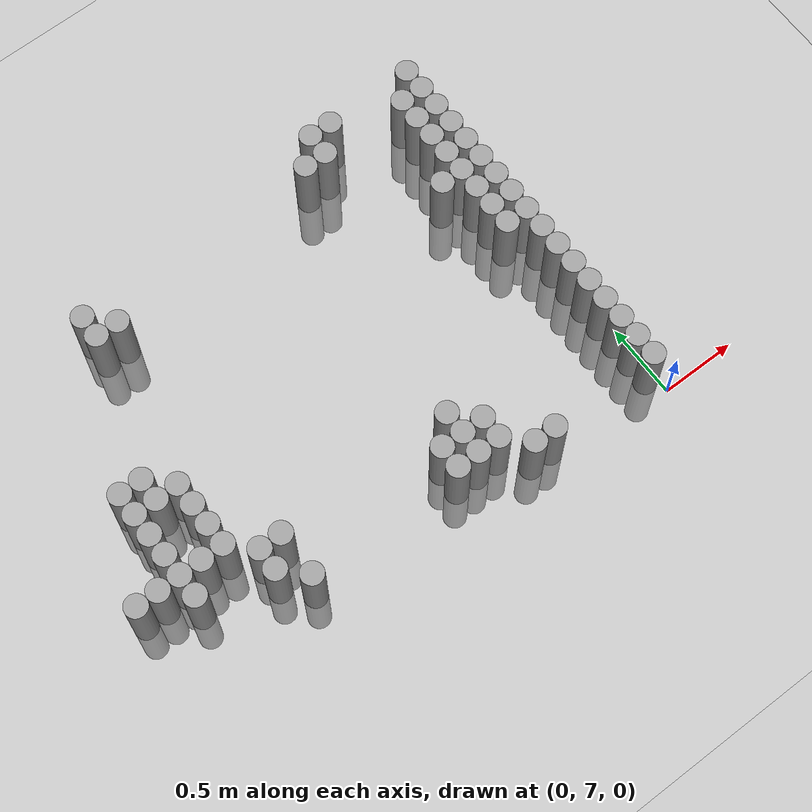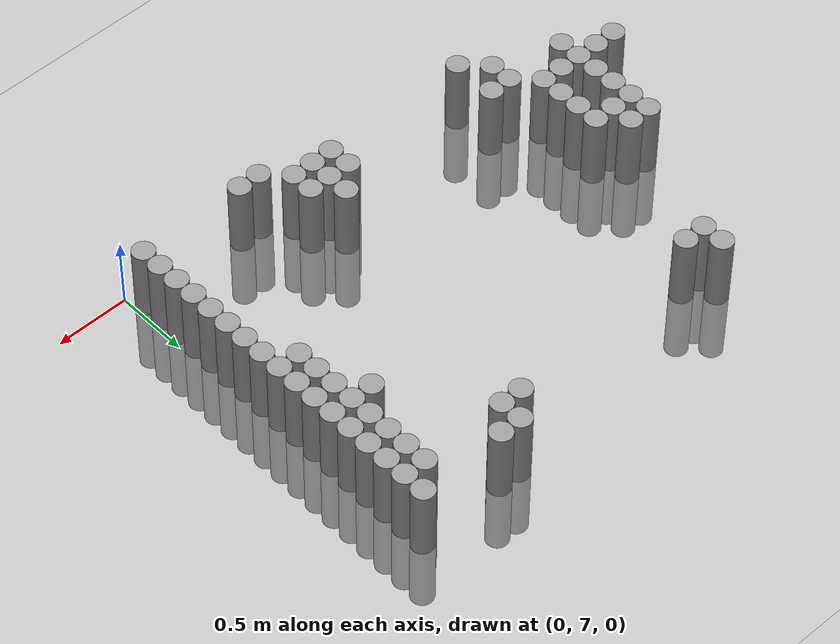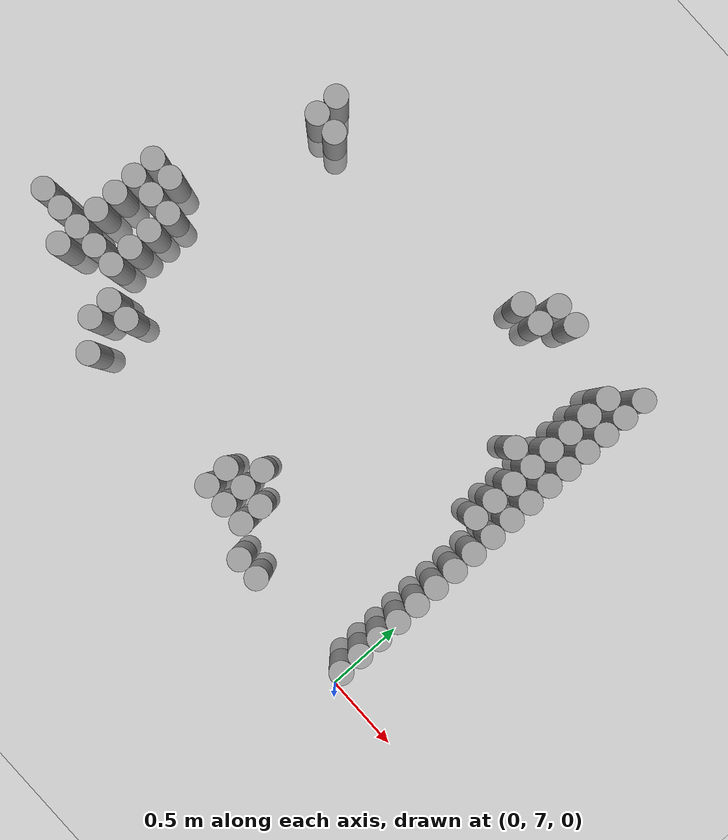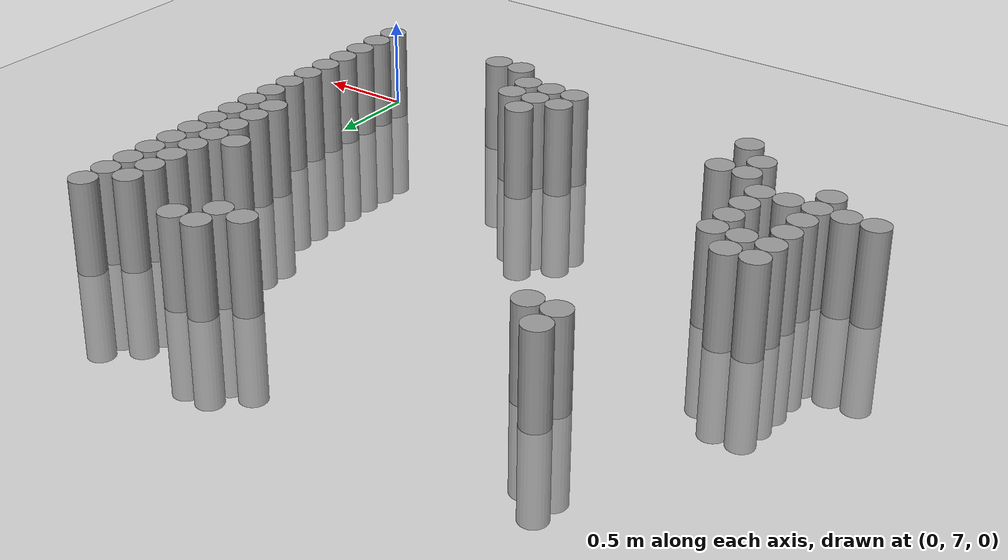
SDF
<sdf version="1.6">
 <world name="default">
  <model name="ground_plane">
   <static>1</static>
   <static>1</static>
   <link name="link">
    <collision name="collision">
     <geometry><plane><normal>0 0 1</normal><size>100 100</size></plane></geometry>
     <surface><friction><ode><mu>100</mu><mu2>50</mu2></ode></friction></surface>
    </collision>
    <visual name="visual">
     <cast_shadows>0</cast_shadows>
     <geometry><plane><normal>0 0 1</normal><size>100 100</size></plane></geometry>
     <material>
      <script><uri>file://media/materials/scripts/gazebo.material</uri><name>Gazebo/Grey</name></script>
     </material>
    </visual>
   </link>
  </model>
  <model name="unit_cylinder_169">
   <static>1</static>
   <pose>-3.375000 7.725000 0.000000 0.000000 0.000000 0.000000</pose>
   <link name="link">
    <inertial>
     <mass>1</mass>
     <inertia><ixx>0.145833</ixx><ixy>0</ixy><ixz>0</ixz><iyy>0.145833</iyy><iyz>0</iyz><izz>0.125</izz></inertia>
    </inertial>
    <collision name="collision">
     <geometry><cylinder><radius>0.075000</radius><length>1</length></cylinder></geometry>
    </collision>
    <visual name="visual">
     <geometry><cylinder><radius>0.075000</radius><length>1</length></cylinder></geometry>
     <material>
      <script><name>Gazebo/Grey</name><uri>file://media/materials/scripts/gazebo.material</uri></script>
     </material>
    </visual>
   </link>
  </model>
  <model name="unit_cylinder_176">
   <static>1</static>
   <pose>-3.225000 7.725000 0.000000 0.000000 0.000000 0.000000</pose>
   <link name="link">
    <inertial>
     <mass>1</mass>
     <inertia><ixx>0.145833</ixx><ixy>0</ixy><ixz>0</ixz><iyy>0.145833</iyy><iyz>0</iyz><izz>0.125</izz></inertia>
    </inertial>
    <collision name="collision">
     <geometry><cylinder><radius>0.075000</radius><length>1</length></cylinder></geometry>
    </collision>
    <visual name="visual">
     <geometry><cylinder><radius>0.075000</radius><length>1</length></cylinder></geometry>
     <material>
      <script><name>Gazebo/Grey</name><uri>file://media/materials/scripts/gazebo.material</uri></script>
     </material>
    </visual>
   </link>
  </model>
  <model name="unit_cylinder_184">
   <static>1</static>
   <pose>-3.075000 7.575000 0.000000 0.000000 0.000000 0.000000</pose>
   <link name="link">
    <inertial>
     <mass>1</mass>
     <inertia><ixx>0.145833</ixx><ixy>0</ixy><ixz>0</ixz><iyy>0.145833</iyy><iyz>0</iyz><izz>0.125</izz></inertia>
    </inertial>
    <collision name="collision">
     <geometry><cylinder><radius>0.075000</radius><length>1</length></cylinder></geometry>
    </collision>
    <visual name="visual">
     <geometry><cylinder><radius>0.075000</radius><length>1</length></cylinder></geometry>
     <material>
      <script><name>Gazebo/Grey</name><uri>file://media/materials/scripts/gazebo.material</uri></script>
     </material>
    </visual>
   </link>
  </model>
  <model name="unit_cylinder_185">
   <static>1</static>
   <pose>-3.075000 7.725000 0.000000 0.000000 0.000000 0.000000</pose>
   <link name="link">
    <inertial>
     <mass>1</mass>
     <inertia><ixx>0.145833</ixx><ixy>0</ixy><ixz>0</ixz><iyy>0.145833</iyy><iyz>0</iyz><izz>0.125</izz></inertia>
    </inertial>
    <collision name="collision">
     <geometry><cylinder><radius>0.075000</radius><length>1</length></cylinder></geometry>
    </collision>
    <visual name="visual">
     <geometry><cylinder><radius>0.075000</radius><length>1</length></cylinder></geometry>
     <material>
      <script><name>Gazebo/Grey</name><uri>file://media/materials/scripts/gazebo.material</uri></script>
     </material>
    </visual>
   </link>
  </model>
  <model name="unit_cylinder_186">
   <static>1</static>
   <pose>-3.075000 7.875000 0.000000 0.000000 0.000000 0.000000</pose>
   <link name="link">
    <inertial>
     <mass>1</mass>
     <inertia><ixx>0.145833</ixx><ixy>0</ixy><ixz>0</ixz><iyy>0.145833</iyy><iyz>0</iyz><izz>0.125</izz></inertia>
    </inertial>
    <collision name="collision">
     <geometry><cylinder><radius>0.075000</radius><length>1</length></cylinder></geometry>
    </collision>
    <visual name="visual">
     <geometry><cylinder><radius>0.075000</radius><length>1</length></cylinder></geometry>
     <material>
      <script><name>Gazebo/Grey</name><uri>file://media/materials/scripts/gazebo.material</uri></script>
     </material>
    </visual>
   </link>
  </model>
  <model name="unit_cylinder_187">
   <static>1</static>
   <pose>-3.075000 8.025000 0.000000 0.000000 0.000000 0.000000</pose>
   <link name="link">
    <inertial>
     <mass>1</mass>
     <inertia><ixx>0.145833</ixx><ixy>0</ixy><ixz>0</ixz><iyy>0.145833</iyy><iyz>0</iyz><izz>0.125</izz></inertia>
    </inertial>
    <collision name="collision">
     <geometry><cylinder><radius>0.075000</radius><length>1</length></cylinder></geometry>
    </collision>
    <visual name="visual">
     <geometry><cylinder><radius>0.075000</radius><length>1</length></cylinder></geometry>
     <material>
      <script><name>Gazebo/Grey</name><uri>file://media/materials/scripts/gazebo.material</uri></script>
     </material>
    </visual>
   </link>
  </model>
  <model name="unit_cylinder_188">
   <static>1</static>
   <pose>-3.075000 8.175000 0.000000 0.000000 0.000000 0.000000</pose>
   <link name="link">
    <inertial>
     <mass>1</mass>
     <inertia><ixx>0.145833</ixx><ixy>0</ixy><ixz>0</ixz><iyy>0.145833</iyy><iyz>0</iyz><izz>0.125</izz></inertia>
    </inertial>
    <collision name="collision">
     <geometry><cylinder><radius>0.075000</radius><length>1</length></cylinder></geometry>
    </collision>
    <visual name="visual">
     <geometry><cylinder><radius>0.075000</radius><length>1</length></cylinder></geometry>
     <material>
      <script><name>Gazebo/Grey</name><uri>file://media/materials/scripts/gazebo.material</uri></script>
     </material>
    </visual>
   </link>
  </model>
  <model name="unit_cylinder_189">
   <static>1</static>
   <pose>-3.075000 8.325000 0.000000 0.000000 0.000000 0.000000</pose>
   <link name="link">
    <inertial>
     <mass>1</mass>
     <inertia><ixx>0.145833</ixx><ixy>0</ixy><ixz>0</ixz><iyy>0.145833</iyy><iyz>0</iyz><izz>0.125</izz></inertia>
    </inertial>
    <collision name="collision">
     <geometry><cylinder><radius>0.075000</radius><length>1</length></cylinder></geometry>
    </collision>
    <visual name="visual">
     <geometry><cylinder><radius>0.075000</radius><length>1</length></cylinder></geometry>
     <material>
      <script><name>Gazebo/Grey</name><uri>file://media/materials/scripts/gazebo.material</uri></script>
     </material>
    </visual>
   </link>
  </model>
  <model name="unit_cylinder_194">
   <static>1</static>
   <pose>-2.925000 7.725000 0.000000 0.000000 0.000000 0.000000</pose>
   <link name="link">
    <inertial>
     <mass>1</mass>
     <inertia><ixx>0.145833</ixx><ixy>0</ixy><ixz>0</ixz><iyy>0.145833</iyy><iyz>0</iyz><izz>0.125</izz></inertia>
    </inertial>
    <collision name="collision">
     <geometry><cylinder><radius>0.075000</radius><length>1</length></cylinder></geometry>
    </collision>
    <visual name="visual">
     <geometry><cylinder><radius>0.075000</radius><length>1</length></cylinder></geometry>
     <material>
      <script><name>Gazebo/Grey</name><uri>file://media/materials/scripts/gazebo.material</uri></script>
     </material>
    </visual>
   </link>
  </model>
  <model name="unit_cylinder_195">
   <static>1</static>
   <pose>-2.925000 8.175000 0.000000 0.000000 0.000000 0.000000</pose>
   <link name="link">
    <inertial>
     <mass>1</mass>
     <inertia><ixx>0.145833</ixx><ixy>0</ixy><ixz>0</ixz><iyy>0.145833</iyy><iyz>0</iyz><izz>0.125</izz></inertia>
    </inertial>
    <collision name="collision">
     <geometry><cylinder><radius>0.075000</radius><length>1</length></cylinder></geometry>
    </collision>
    <visual name="visual">
     <geometry><cylinder><radius>0.075000</radius><length>1</length></cylinder></geometry>
     <material>
      <script><name>Gazebo/Grey</name><uri>file://media/materials/scripts/gazebo.material</uri></script>
     </material>
    </visual>
   </link>
  </model>
  <model name="unit_cylinder_196">
   <static>1</static>
   <pose>-2.925000 8.325000 0.000000 0.000000 0.000000 0.000000</pose>
   <link name="link">
    <inertial>
     <mass>1</mass>
     <inertia><ixx>0.145833</ixx><ixy>0</ixy><ixz>0</ixz><iyy>0.145833</iyy><iyz>0</iyz><izz>0.125</izz></inertia>
    </inertial>
    <collision name="collision">
     <geometry><cylinder><radius>0.075000</radius><length>1</length></cylinder></geometry>
    </collision>
    <visual name="visual">
     <geometry><cylinder><radius>0.075000</radius><length>1</length></cylinder></geometry>
     <material>
      <script><name>Gazebo/Grey</name><uri>file://media/materials/scripts/gazebo.material</uri></script>
     </material>
    </visual>
   </link>
  </model>
  <model name="unit_cylinder_199">
   <static>1</static>
   <pose>-2.775000 7.725000 0.000000 0.000000 0.000000 0.000000</pose>
   <link name="link">
    <inertial>
     <mass>1</mass>
     <inertia><ixx>0.145833</ixx><ixy>0</ixy><ixz>0</ixz><iyy>0.145833</iyy><iyz>0</iyz><izz>0.125</izz></inertia>
    </inertial>
    <collision name="collision">
     <geometry><cylinder><radius>0.075000</radius><length>1</length></cylinder></geometry>
    </collision>
    <visual name="visual">
     <geometry><cylinder><radius>0.075000</radius><length>1</length></cylinder></geometry>
     <material>
      <script><name>Gazebo/Grey</name><uri>file://media/materials/scripts/gazebo.material</uri></script>
     </material>
    </visual>
   </link>
  </model>
  <model name="unit_cylinder_200">
   <static>1</static>
   <pose>-2.775000 7.875000 0.000000 0.000000 0.000000 0.000000</pose>
   <link name="link">
    <inertial>
     <mass>1</mass>
     <inertia><ixx>0.145833</ixx><ixy>0</ixy><ixz>0</ixz><iyy>0.145833</iyy><iyz>0</iyz><izz>0.125</izz></inertia>
    </inertial>
    <collision name="collision">
     <geometry><cylinder><radius>0.075000</radius><length>1</length></cylinder></geometry>
    </collision>
    <visual name="visual">
     <geometry><cylinder><radius>0.075000</radius><length>1</length></cylinder></geometry>
     <material>
      <script><name>Gazebo/Grey</name><uri>file://media/materials/scripts/gazebo.material</uri></script>
     </material>
    </visual>
   </link>
  </model>
  <model name="unit_cylinder_201">
   <static>1</static>
   <pose>-2.775000 8.025000 0.000000 0.000000 0.000000 0.000000</pose>
   <link name="link">
    <inertial>
     <mass>1</mass>
     <inertia><ixx>0.145833</ixx><ixy>0</ixy><ixz>0</ixz><iyy>0.145833</iyy><iyz>0</iyz><izz>0.125</izz></inertia>
    </inertial>
    <collision name="collision">
     <geometry><cylinder><radius>0.075000</radius><length>1</length></cylinder></geometry>
    </collision>
    <visual name="visual">
     <geometry><cylinder><radius>0.075000</radius><length>1</length></cylinder></geometry>
     <material>
      <script><name>Gazebo/Grey</name><uri>file://media/materials/scripts/gazebo.material</uri></script>
     </material>
    </visual>
   </link>
  </model>
  <model name="unit_cylinder_202">
   <static>1</static>
   <pose>-2.775000 8.175000 0.000000 0.000000 0.000000 0.000000</pose>
   <link name="link">
    <inertial>
     <mass>1</mass>
     <inertia><ixx>0.145833</ixx><ixy>0</ixy><ixz>0</ixz><iyy>0.145833</iyy><iyz>0</iyz><izz>0.125</izz></inertia>
    </inertial>
    <collision name="collision">
     <geometry><cylinder><radius>0.075000</radius><length>1</length></cylinder></geometry>
    </collision>
    <visual name="visual">
     <geometry><cylinder><radius>0.075000</radius><length>1</length></cylinder></geometry>
     <material>
      <script><name>Gazebo/Grey</name><uri>file://media/materials/scripts/gazebo.material</uri></script>
     </material>
    </visual>
   </link>
  </model>
  <model name="unit_cylinder_204">
   <static>1</static>
   <pose>-2.625000 7.425000 0.000000 0.000000 0.000000 0.000000</pose>
   <link name="link">
    <inertial>
     <mass>1</mass>
     <inertia><ixx>0.145833</ixx><ixy>0</ixy><ixz>0</ixz><iyy>0.145833</iyy><iyz>0</iyz><izz>0.125</izz></inertia>
    </inertial>
    <collision name="collision">
     <geometry><cylinder><radius>0.075000</radius><length>1</length></cylinder></geometry>
    </collision>
    <visual name="visual">
     <geometry><cylinder><radius>0.075000</radius><length>1</length></cylinder></geometry>
     <material>
      <script><name>Gazebo/Grey</name><uri>file://media/materials/scripts/gazebo.material</uri></script>
     </material>
    </visual>
   </link>
  </model>
  <model name="unit_cylinder_205">
   <static>1</static>
   <pose>-2.625000 7.575000 0.000000 0.000000 0.000000 0.000000</pose>
   <link name="link">
    <inertial>
     <mass>1</mass>
     <inertia><ixx>0.145833</ixx><ixy>0</ixy><ixz>0</ixz><iyy>0.145833</iyy><iyz>0</iyz><izz>0.125</izz></inertia>
    </inertial>
    <collision name="collision">
     <geometry><cylinder><radius>0.075000</radius><length>1</length></cylinder></geometry>
    </collision>
    <visual name="visual">
     <geometry><cylinder><radius>0.075000</radius><length>1</length></cylinder></geometry>
     <material>
      <script><name>Gazebo/Grey</name><uri>file://media/materials/scripts/gazebo.material</uri></script>
     </material>
    </visual>
   </link>
  </model>
  <model name="unit_cylinder_206">
   <static>1</static>
   <pose>-2.625000 9.225000 0.000000 0.000000 0.000000 0.000000</pose>
   <link name="link">
    <inertial>
     <mass>1</mass>
     <inertia><ixx>0.145833</ixx><ixy>0</ixy><ixz>0</ixz><iyy>0.145833</iyy><iyz>0</iyz><izz>0.125</izz></inertia>
    </inertial>
    <collision name="collision">
     <geometry><cylinder><radius>0.075000</radius><length>1</length></cylinder></geometry>
    </collision>
    <visual name="visual">
     <geometry><cylinder><radius>0.075000</radius><length>1</length></cylinder></geometry>
     <material>
      <script><name>Gazebo/Grey</name><uri>file://media/materials/scripts/gazebo.material</uri></script>
     </material>
    </visual>
   </link>
  </model>
  <model name="unit_cylinder_207">
   <static>1</static>
   <pose>-2.625000 9.375000 0.000000 0.000000 0.000000 0.000000</pose>
   <link name="link">
    <inertial>
     <mass>1</mass>
     <inertia><ixx>0.145833</ixx><ixy>0</ixy><ixz>0</ixz><iyy>0.145833</iyy><iyz>0</iyz><izz>0.125</izz></inertia>
    </inertial>
    <collision name="collision">
     <geometry><cylinder><radius>0.075000</radius><length>1</length></cylinder></geometry>
    </collision>
    <visual name="visual">
     <geometry><cylinder><radius>0.075000</radius><length>1</length></cylinder></geometry>
     <material>
      <script><name>Gazebo/Grey</name><uri>file://media/materials/scripts/gazebo.material</uri></script>
     </material>
    </visual>
   </link>
  </model>
  <model name="unit_cylinder_212">
   <static>1</static>
   <pose>-2.475000 7.275000 0.000000 0.000000 0.000000 0.000000</pose>
   <link name="link">
    <inertial>
     <mass>1</mass>
     <inertia><ixx>0.145833</ixx><ixy>0</ixy><ixz>0</ixz><iyy>0.145833</iyy><iyz>0</iyz><izz>0.125</izz></inertia>
    </inertial>
    <collision name="collision">
     <geometry><cylinder><radius>0.075000</radius><length>1</length></cylinder></geometry>
    </collision>
    <visual name="visual">
     <geometry><cylinder><radius>0.075000</radius><length>1</length></cylinder></geometry>
     <material>
      <script><name>Gazebo/Grey</name><uri>file://media/materials/scripts/gazebo.material</uri></script>
     </material>
    </visual>
   </link>
  </model>
  <model name="unit_cylinder_213">
   <static>1</static>
   <pose>-2.475000 7.575000 0.000000 0.000000 0.000000 0.000000</pose>
   <link name="link">
    <inertial>
     <mass>1</mass>
     <inertia><ixx>0.145833</ixx><ixy>0</ixy><ixz>0</ixz><iyy>0.145833</iyy><iyz>0</iyz><izz>0.125</izz></inertia>
    </inertial>
    <collision name="collision">
     <geometry><cylinder><radius>0.075000</radius><length>1</length></cylinder></geometry>
    </collision>
    <visual name="visual">
     <geometry><cylinder><radius>0.075000</radius><length>1</length></cylinder></geometry>
     <material>
      <script><name>Gazebo/Grey</name><uri>file://media/materials/scripts/gazebo.material</uri></script>
     </material>
    </visual>
   </link>
  </model>
  <model name="unit_cylinder_214">
   <static>1</static>
   <pose>-2.475000 9.225000 0.000000 0.000000 0.000000 0.000000</pose>
   <link name="link">
    <inertial>
     <mass>1</mass>
     <inertia><ixx>0.145833</ixx><ixy>0</ixy><ixz>0</ixz><iyy>0.145833</iyy><iyz>0</iyz><izz>0.125</izz></inertia>
    </inertial>
    <collision name="collision">
     <geometry><cylinder><radius>0.075000</radius><length>1</length></cylinder></geometry>
    </collision>
    <visual name="visual">
     <geometry><cylinder><radius>0.075000</radius><length>1</length></cylinder></geometry>
     <material>
      <script><name>Gazebo/Grey</name><uri>file://media/materials/scripts/gazebo.material</uri></script>
     </material>
    </visual>
   </link>
  </model>
  <model name="unit_cylinder_220">
   <static>1</static>
   <pose>-1.425000 7.275000 0.000000 0.000000 0.000000 0.000000</pose>
   <link name="link">
    <inertial>
     <mass>1</mass>
     <inertia><ixx>0.145833</ixx><ixy>0</ixy><ixz>0</ixz><iyy>0.145833</iyy><iyz>0</iyz><izz>0.125</izz></inertia>
    </inertial>
    <collision name="collision">
     <geometry><cylinder><radius>0.075000</radius><length>1</length></cylinder></geometry>
    </collision>
    <visual name="visual">
     <geometry><cylinder><radius>0.075000</radius><length>1</length></cylinder></geometry>
     <material>
      <script><name>Gazebo/Grey</name><uri>file://media/materials/scripts/gazebo.material</uri></script>
     </material>
    </visual>
   </link>
  </model>
  <model name="unit_cylinder_221">
   <static>1</static>
   <pose>-1.425000 7.425000 0.000000 0.000000 0.000000 0.000000</pose>
   <link name="link">
    <inertial>
     <mass>1</mass>
     <inertia><ixx>0.145833</ixx><ixy>0</ixy><ixz>0</ixz><iyy>0.145833</iyy><iyz>0</iyz><izz>0.125</izz></inertia>
    </inertial>
    <collision name="collision">
     <geometry><cylinder><radius>0.075000</radius><length>1</length></cylinder></geometry>
    </collision>
    <visual name="visual">
     <geometry><cylinder><radius>0.075000</radius><length>1</length></cylinder></geometry>
     <material>
      <script><name>Gazebo/Grey</name><uri>file://media/materials/scripts/gazebo.material</uri></script>
     </material>
    </visual>
   </link>
  </model>
  <model name="unit_cylinder_224">
   <static>1</static>
   <pose>-1.275000 7.275000 0.000000 0.000000 0.000000 0.000000</pose>
   <link name="link">
    <inertial>
     <mass>1</mass>
     <inertia><ixx>0.145833</ixx><ixy>0</ixy><ixz>0</ixz><iyy>0.145833</iyy><iyz>0</iyz><izz>0.125</izz></inertia>
    </inertial>
    <collision name="collision">
     <geometry><cylinder><radius>0.075000</radius><length>1</length></cylinder></geometry>
    </collision>
    <visual name="visual">
     <geometry><cylinder><radius>0.075000</radius><length>1</length></cylinder></geometry>
     <material>
      <script><name>Gazebo/Grey</name><uri>file://media/materials/scripts/gazebo.material</uri></script>
     </material>
    </visual>
   </link>
  </model>
  <model name="unit_cylinder_225">
   <static>1</static>
   <pose>-1.275000 7.425000 0.000000 0.000000 0.000000 0.000000</pose>
   <link name="link">
    <inertial>
     <mass>1</mass>
     <inertia><ixx>0.145833</ixx><ixy>0</ixy><ixz>0</ixz><iyy>0.145833</iyy><iyz>0</iyz><izz>0.125</izz></inertia>
    </inertial>
    <collision name="collision">
     <geometry><cylinder><radius>0.075000</radius><length>1</length></cylinder></geometry>
    </collision>
    <visual name="visual">
     <geometry><cylinder><radius>0.075000</radius><length>1</length></cylinder></geometry>
     <material>
      <script><name>Gazebo/Grey</name><uri>file://media/materials/scripts/gazebo.material</uri></script>
     </material>
    </visual>
   </link>
  </model>
  <model name="unit_cylinder_226">
   <static>1</static>
   <pose>-1.275000 7.575000 0.000000 0.000000 0.000000 0.000000</pose>
   <link name="link">
    <inertial>
     <mass>1</mass>
     <inertia><ixx>0.145833</ixx><ixy>0</ixy><ixz>0</ixz><iyy>0.145833</iyy><iyz>0</iyz><izz>0.125</izz></inertia>
    </inertial>
    <collision name="collision">
     <geometry><cylinder><radius>0.075000</radius><length>1</length></cylinder></geometry>
    </collision>
    <visual name="visual">
     <geometry><cylinder><radius>0.075000</radius><length>1</length></cylinder></geometry>
     <material>
      <script><name>Gazebo/Grey</name><uri>file://media/materials/scripts/gazebo.material</uri></script>
     </material>
    </visual>
   </link>
  </model>
  <model name="unit_cylinder_230">
   <static>1</static>
   <pose>-1.125000 7.275000 0.000000 0.000000 0.000000 0.000000</pose>
   <link name="link">
    <inertial>
     <mass>1</mass>
     <inertia><ixx>0.145833</ixx><ixy>0</ixy><ixz>0</ixz><iyy>0.145833</iyy><iyz>0</iyz><izz>0.125</izz></inertia>
    </inertial>
    <collision name="collision">
     <geometry><cylinder><radius>0.075000</radius><length>1</length></cylinder></geometry>
    </collision>
    <visual name="visual">
     <geometry><cylinder><radius>0.075000</radius><length>1</length></cylinder></geometry>
     <material>
      <script><name>Gazebo/Grey</name><uri>file://media/materials/scripts/gazebo.material</uri></script>
     </material>
    </visual>
   </link>
  </model>
  <model name="unit_cylinder_231">
   <static>1</static>
   <pose>-1.125000 7.425000 0.000000 0.000000 0.000000 0.000000</pose>
   <link name="link">
    <inertial>
     <mass>1</mass>
     <inertia><ixx>0.145833</ixx><ixy>0</ixy><ixz>0</ixz><iyy>0.145833</iyy><iyz>0</iyz><izz>0.125</izz></inertia>
    </inertial>
    <collision name="collision">
     <geometry><cylinder><radius>0.075000</radius><length>1</length></cylinder></geometry>
    </collision>
    <visual name="visual">
     <geometry><cylinder><radius>0.075000</radius><length>1</length></cylinder></geometry>
     <material>
      <script><name>Gazebo/Grey</name><uri>file://media/materials/scripts/gazebo.material</uri></script>
     </material>
    </visual>
   </link>
  </model>
  <model name="unit_cylinder_235">
   <static>1</static>
   <pose>-0.975000 7.125000 0.000000 0.000000 0.000000 0.000000</pose>
   <link name="link">
    <inertial>
     <mass>1</mass>
     <inertia><ixx>0.145833</ixx><ixy>0</ixy><ixz>0</ixz><iyy>0.145833</iyy><iyz>0</iyz><izz>0.125</izz></inertia>
    </inertial>
    <collision name="collision">
     <geometry><cylinder><radius>0.075000</radius><length>1</length></cylinder></geometry>
    </collision>
    <visual name="visual">
     <geometry><cylinder><radius>0.075000</radius><length>1</length></cylinder></geometry>
     <material>
      <script><name>Gazebo/Grey</name><uri>file://media/materials/scripts/gazebo.material</uri></script>
     </material>
    </visual>
   </link>
  </model>
  <model name="unit_cylinder_236">
   <static>1</static>
   <pose>-0.975000 9.375000 0.000000 0.000000 0.000000 0.000000</pose>
   <link name="link">
    <inertial>
     <mass>1</mass>
     <inertia><ixx>0.145833</ixx><ixy>0</ixy><ixz>0</ixz><iyy>0.145833</iyy><iyz>0</iyz><izz>0.125</izz></inertia>
    </inertial>
    <collision name="collision">
     <geometry><cylinder><radius>0.075000</radius><length>1</length></cylinder></geometry>
    </collision>
    <visual name="visual">
     <geometry><cylinder><radius>0.075000</radius><length>1</length></cylinder></geometry>
     <material>
      <script><name>Gazebo/Grey</name><uri>file://media/materials/scripts/gazebo.material</uri></script>
     </material>
    </visual>
   </link>
  </model>
  <model name="unit_cylinder_242">
   <static>1</static>
   <pose>-0.825000 7.125000 0.000000 0.000000 0.000000 0.000000</pose>
   <link name="link">
    <inertial>
     <mass>1</mass>
     <inertia><ixx>0.145833</ixx><ixy>0</ixy><ixz>0</ixz><iyy>0.145833</iyy><iyz>0</iyz><izz>0.125</izz></inertia>
    </inertial>
    <collision name="collision">
     <geometry><cylinder><radius>0.075000</radius><length>1</length></cylinder></geometry>
    </collision>
    <visual name="visual">
     <geometry><cylinder><radius>0.075000</radius><length>1</length></cylinder></geometry>
     <material>
      <script><name>Gazebo/Grey</name><uri>file://media/materials/scripts/gazebo.material</uri></script>
     </material>
    </visual>
   </link>
  </model>
  <model name="unit_cylinder_243">
   <static>1</static>
   <pose>-0.825000 9.375000 0.000000 0.000000 0.000000 0.000000</pose>
   <link name="link">
    <inertial>
     <mass>1</mass>
     <inertia><ixx>0.145833</ixx><ixy>0</ixy><ixz>0</ixz><iyy>0.145833</iyy><iyz>0</iyz><izz>0.125</izz></inertia>
    </inertial>
    <collision name="collision">
     <geometry><cylinder><radius>0.075000</radius><length>1</length></cylinder></geometry>
    </collision>
    <visual name="visual">
     <geometry><cylinder><radius>0.075000</radius><length>1</length></cylinder></geometry>
     <material>
      <script><name>Gazebo/Grey</name><uri>file://media/materials/scripts/gazebo.material</uri></script>
     </material>
    </visual>
   </link>
  </model>
  <model name="unit_cylinder_244">
   <static>1</static>
   <pose>-0.825000 9.525000 0.000000 0.000000 0.000000 0.000000</pose>
   <link name="link">
    <inertial>
     <mass>1</mass>
     <inertia><ixx>0.145833</ixx><ixy>0</ixy><ixz>0</ixz><iyy>0.145833</iyy><iyz>0</iyz><izz>0.125</izz></inertia>
    </inertial>
    <collision name="collision">
     <geometry><cylinder><radius>0.075000</radius><length>1</length></cylinder></geometry>
    </collision>
    <visual name="visual">
     <geometry><cylinder><radius>0.075000</radius><length>1</length></cylinder></geometry>
     <material>
      <script><name>Gazebo/Grey</name><uri>file://media/materials/scripts/gazebo.material</uri></script>
     </material>
    </visual>
   </link>
  </model>
  <model name="unit_cylinder_249">
   <static>1</static>
   <pose>-0.675000 9.525000 0.000000 0.000000 0.000000 0.000000</pose>
   <link name="link">
    <inertial>
     <mass>1</mass>
     <inertia><ixx>0.145833</ixx><ixy>0</ixy><ixz>0</ixz><iyy>0.145833</iyy><iyz>0</iyz><izz>0.125</izz></inertia>
    </inertial>
    <collision name="collision">
     <geometry><cylinder><radius>0.075000</radius><length>1</length></cylinder></geometry>
    </collision>
    <visual name="visual">
     <geometry><cylinder><radius>0.075000</radius><length>1</length></cylinder></geometry>
     <material>
      <script><name>Gazebo/Grey</name><uri>file://media/materials/scripts/gazebo.material</uri></script>
     </material>
    </visual>
   </link>
  </model>
  <model name="unit_cylinder_256">
   <static>1</static>
   <pose>-0.375000 8.775000 0.000000 0.000000 0.000000 0.000000</pose>
   <link name="link">
    <inertial>
     <mass>1</mass>
     <inertia><ixx>0.145833</ixx><ixy>0</ixy><ixz>0</ixz><iyy>0.145833</iyy><iyz>0</iyz><izz>0.125</izz></inertia>
    </inertial>
    <collision name="collision">
     <geometry><cylinder><radius>0.075000</radius><length>1</length></cylinder></geometry>
    </collision>
    <visual name="visual">
     <geometry><cylinder><radius>0.075000</radius><length>1</length></cylinder></geometry>
     <material>
      <script><name>Gazebo/Grey</name><uri>file://media/materials/scripts/gazebo.material</uri></script>
     </material>
    </visual>
   </link>
  </model>
  <model name="unit_cylinder_266">
   <static>1</static>
   <pose>-0.225000 8.325000 0.000000 0.000000 0.000000 0.000000</pose>
   <link name="link">
    <inertial>
     <mass>1</mass>
     <inertia><ixx>0.145833</ixx><ixy>0</ixy><ixz>0</ixz><iyy>0.145833</iyy><iyz>0</iyz><izz>0.125</izz></inertia>
    </inertial>
    <collision name="collision">
     <geometry><cylinder><radius>0.075000</radius><length>1</length></cylinder></geometry>
    </collision>
    <visual name="visual">
     <geometry><cylinder><radius>0.075000</radius><length>1</length></cylinder></geometry>
     <material>
      <script><name>Gazebo/Grey</name><uri>file://media/materials/scripts/gazebo.material</uri></script>
     </material>
    </visual>
   </link>
  </model>
  <model name="unit_cylinder_267">
   <static>1</static>
   <pose>-0.225000 8.475000 0.000000 0.000000 0.000000 0.000000</pose>
   <link name="link">
    <inertial>
     <mass>1</mass>
     <inertia><ixx>0.145833</ixx><ixy>0</ixy><ixz>0</ixz><iyy>0.145833</iyy><iyz>0</iyz><izz>0.125</izz></inertia>
    </inertial>
    <collision name="collision">
     <geometry><cylinder><radius>0.075000</radius><length>1</length></cylinder></geometry>
    </collision>
    <visual name="visual">
     <geometry><cylinder><radius>0.075000</radius><length>1</length></cylinder></geometry>
     <material>
      <script><name>Gazebo/Grey</name><uri>file://media/materials/scripts/gazebo.material</uri></script>
     </material>
    </visual>
   </link>
  </model>
  <model name="unit_cylinder_268">
   <static>1</static>
   <pose>-0.225000 8.625000 0.000000 0.000000 0.000000 0.000000</pose>
   <link name="link">
    <inertial>
     <mass>1</mass>
     <inertia><ixx>0.145833</ixx><ixy>0</ixy><ixz>0</ixz><iyy>0.145833</iyy><iyz>0</iyz><izz>0.125</izz></inertia>
    </inertial>
    <collision name="collision">
     <geometry><cylinder><radius>0.075000</radius><length>1</length></cylinder></geometry>
    </collision>
    <visual name="visual">
     <geometry><cylinder><radius>0.075000</radius><length>1</length></cylinder></geometry>
     <material>
      <script><name>Gazebo/Grey</name><uri>file://media/materials/scripts/gazebo.material</uri></script>
     </material>
    </visual>
   </link>
  </model>
  <model name="unit_cylinder_269">
   <static>1</static>
   <pose>-0.225000 8.775000 0.000000 0.000000 0.000000 0.000000</pose>
   <link name="link">
    <inertial>
     <mass>1</mass>
     <inertia><ixx>0.145833</ixx><ixy>0</ixy><ixz>0</ixz><iyy>0.145833</iyy><iyz>0</iyz><izz>0.125</izz></inertia>
    </inertial>
    <collision name="collision">
     <geometry><cylinder><radius>0.075000</radius><length>1</length></cylinder></geometry>
    </collision>
    <visual name="visual">
     <geometry><cylinder><radius>0.075000</radius><length>1</length></cylinder></geometry>
     <material>
      <script><name>Gazebo/Grey</name><uri>file://media/materials/scripts/gazebo.material</uri></script>
     </material>
    </visual>
   </link>
  </model>
  <model name="unit_cylinder_270">
   <static>1</static>
   <pose>-0.225000 8.925000 0.000000 0.000000 0.000000 0.000000</pose>
   <link name="link">
    <inertial>
     <mass>1</mass>
     <inertia><ixx>0.145833</ixx><ixy>0</ixy><ixz>0</ixz><iyy>0.145833</iyy><iyz>0</iyz><izz>0.125</izz></inertia>
    </inertial>
    <collision name="collision">
     <geometry><cylinder><radius>0.075000</radius><length>1</length></cylinder></geometry>
    </collision>
    <visual name="visual">
     <geometry><cylinder><radius>0.075000</radius><length>1</length></cylinder></geometry>
     <material>
      <script><name>Gazebo/Grey</name><uri>file://media/materials/scripts/gazebo.material</uri></script>
     </material>
    </visual>
   </link>
  </model>
  <model name="unit_cylinder_271">
   <static>1</static>
   <pose>-0.225000 9.075000 0.000000 0.000000 0.000000 0.000000</pose>
   <link name="link">
    <inertial>
     <mass>1</mass>
     <inertia><ixx>0.145833</ixx><ixy>0</ixy><ixz>0</ixz><iyy>0.145833</iyy><iyz>0</iyz><izz>0.125</izz></inertia>
    </inertial>
    <collision name="collision">
     <geometry><cylinder><radius>0.075000</radius><length>1</length></cylinder></geometry>
    </collision>
    <visual name="visual">
     <geometry><cylinder><radius>0.075000</radius><length>1</length></cylinder></geometry>
     <material>
      <script><name>Gazebo/Grey</name><uri>file://media/materials/scripts/gazebo.material</uri></script>
     </material>
    </visual>
   </link>
  </model>
  <model name="unit_cylinder_272">
   <static>1</static>
   <pose>-0.225000 9.225000 0.000000 0.000000 0.000000 0.000000</pose>
   <link name="link">
    <inertial>
     <mass>1</mass>
     <inertia><ixx>0.145833</ixx><ixy>0</ixy><ixz>0</ixz><iyy>0.145833</iyy><iyz>0</iyz><izz>0.125</izz></inertia>
    </inertial>
    <collision name="collision">
     <geometry><cylinder><radius>0.075000</radius><length>1</length></cylinder></geometry>
    </collision>
    <visual name="visual">
     <geometry><cylinder><radius>0.075000</radius><length>1</length></cylinder></geometry>
     <material>
      <script><name>Gazebo/Grey</name><uri>file://media/materials/scripts/gazebo.material</uri></script>
     </material>
    </visual>
   </link>
  </model>
  <model name="unit_cylinder_273">
   <static>1</static>
   <pose>-0.225000 9.375000 0.000000 0.000000 0.000000 0.000000</pose>
   <link name="link">
    <inertial>
     <mass>1</mass>
     <inertia><ixx>0.145833</ixx><ixy>0</ixy><ixz>0</ixz><iyy>0.145833</iyy><iyz>0</iyz><izz>0.125</izz></inertia>
    </inertial>
    <collision name="collision">
     <geometry><cylinder><radius>0.075000</radius><length>1</length></cylinder></geometry>
    </collision>
    <visual name="visual">
     <geometry><cylinder><radius>0.075000</radius><length>1</length></cylinder></geometry>
     <material>
      <script><name>Gazebo/Grey</name><uri>file://media/materials/scripts/gazebo.material</uri></script>
     </material>
    </visual>
   </link>
  </model>
  <model name="unit_cylinder_287">
   <static>1</static>
   <pose>-0.075000 7.125000 0.000000 0.000000 0.000000 0.000000</pose>
   <link name="link">
    <inertial>
     <mass>1</mass>
     <inertia><ixx>0.145833</ixx><ixy>0</ixy><ixz>0</ixz><iyy>0.145833</iyy><iyz>0</iyz><izz>0.125</izz></inertia>
    </inertial>
    <collision name="collision">
     <geometry><cylinder><radius>0.075000</radius><length>1</length></cylinder></geometry>
    </collision>
    <visual name="visual">
     <geometry><cylinder><radius>0.075000</radius><length>1</length></cylinder></geometry>
     <material>
      <script><name>Gazebo/Grey</name><uri>file://media/materials/scripts/gazebo.material</uri></script>
     </material>
    </visual>
   </link>
  </model>
  <model name="unit_cylinder_288">
   <static>1</static>
   <pose>-0.075000 7.275000 0.000000 0.000000 0.000000 0.000000</pose>
   <link name="link">
    <inertial>
     <mass>1</mass>
     <inertia><ixx>0.145833</ixx><ixy>0</ixy><ixz>0</ixz><iyy>0.145833</iyy><iyz>0</iyz><izz>0.125</izz></inertia>
    </inertial>
    <collision name="collision">
     <geometry><cylinder><radius>0.075000</radius><length>1</length></cylinder></geometry>
    </collision>
    <visual name="visual">
     <geometry><cylinder><radius>0.075000</radius><length>1</length></cylinder></geometry>
     <material>
      <script><name>Gazebo/Grey</name><uri>file://media/materials/scripts/gazebo.material</uri></script>
     </material>
    </visual>
   </link>
  </model>
  <model name="unit_cylinder_289">
   <static>1</static>
   <pose>-0.075000 7.425000 0.000000 0.000000 0.000000 0.000000</pose>
   <link name="link">
    <inertial>
     <mass>1</mass>
     <inertia><ixx>0.145833</ixx><ixy>0</ixy><ixz>0</ixz><iyy>0.145833</iyy><iyz>0</iyz><izz>0.125</izz></inertia>
    </inertial>
    <collision name="collision">
     <geometry><cylinder><radius>0.075000</radius><length>1</length></cylinder></geometry>
    </collision>
    <visual name="visual">
     <geometry><cylinder><radius>0.075000</radius><length>1</length></cylinder></geometry>
     <material>
      <script><name>Gazebo/Grey</name><uri>file://media/materials/scripts/gazebo.material</uri></script>
     </material>
    </visual>
   </link>
  </model>
  <model name="unit_cylinder_290">
   <static>1</static>
   <pose>-0.075000 7.575000 0.000000 0.000000 0.000000 0.000000</pose>
   <link name="link">
    <inertial>
     <mass>1</mass>
     <inertia><ixx>0.145833</ixx><ixy>0</ixy><ixz>0</ixz><iyy>0.145833</iyy><iyz>0</iyz><izz>0.125</izz></inertia>
    </inertial>
    <collision name="collision">
     <geometry><cylinder><radius>0.075000</radius><length>1</length></cylinder></geometry>
    </collision>
    <visual name="visual">
     <geometry><cylinder><radius>0.075000</radius><length>1</length></cylinder></geometry>
     <material>
      <script><name>Gazebo/Grey</name><uri>file://media/materials/scripts/gazebo.material</uri></script>
     </material>
    </visual>
   </link>
  </model>
  <model name="unit_cylinder_291">
   <static>1</static>
   <pose>-0.075000 7.725000 0.000000 0.000000 0.000000 0.000000</pose>
   <link name="link">
    <inertial>
     <mass>1</mass>
     <inertia><ixx>0.145833</ixx><ixy>0</ixy><ixz>0</ixz><iyy>0.145833</iyy><iyz>0</iyz><izz>0.125</izz></inertia>
    </inertial>
    <collision name="collision">
     <geometry><cylinder><radius>0.075000</radius><length>1</length></cylinder></geometry>
    </collision>
    <visual name="visual">
     <geometry><cylinder><radius>0.075000</radius><length>1</length></cylinder></geometry>
     <material>
      <script><name>Gazebo/Grey</name><uri>file://media/materials/scripts/gazebo.material</uri></script>
     </material>
    </visual>
   </link>
  </model>
  <model name="unit_cylinder_292">
   <static>1</static>
   <pose>-0.075000 7.875000 0.000000 0.000000 0.000000 0.000000</pose>
   <link name="link">
    <inertial>
     <mass>1</mass>
     <inertia><ixx>0.145833</ixx><ixy>0</ixy><ixz>0</ixz><iyy>0.145833</iyy><iyz>0</iyz><izz>0.125</izz></inertia>
    </inertial>
    <collision name="collision">
     <geometry><cylinder><radius>0.075000</radius><length>1</length></cylinder></geometry>
    </collision>
    <visual name="visual">
     <geometry><cylinder><radius>0.075000</radius><length>1</length></cylinder></geometry>
     <material>
      <script><name>Gazebo/Grey</name><uri>file://media/materials/scripts/gazebo.material</uri></script>
     </material>
    </visual>
   </link>
  </model>
  <model name="unit_cylinder_293">
   <static>1</static>
   <pose>-0.075000 8.025000 0.000000 0.000000 0.000000 0.000000</pose>
   <link name="link">
    <inertial>
     <mass>1</mass>
     <inertia><ixx>0.145833</ixx><ixy>0</ixy><ixz>0</ixz><iyy>0.145833</iyy><iyz>0</iyz><izz>0.125</izz></inertia>
    </inertial>
    <collision name="collision">
     <geometry><cylinder><radius>0.075000</radius><length>1</length></cylinder></geometry>
    </collision>
    <visual name="visual">
     <geometry><cylinder><radius>0.075000</radius><length>1</length></cylinder></geometry>
     <material>
      <script><name>Gazebo/Grey</name><uri>file://media/materials/scripts/gazebo.material</uri></script>
     </material>
    </visual>
   </link>
  </model>
  <model name="unit_cylinder_294">
   <static>1</static>
   <pose>-0.075000 8.175000 0.000000 0.000000 0.000000 0.000000</pose>
   <link name="link">
    <inertial>
     <mass>1</mass>
     <inertia><ixx>0.145833</ixx><ixy>0</ixy><ixz>0</ixz><iyy>0.145833</iyy><iyz>0</iyz><izz>0.125</izz></inertia>
    </inertial>
    <collision name="collision">
     <geometry><cylinder><radius>0.075000</radius><length>1</length></cylinder></geometry>
    </collision>
    <visual name="visual">
     <geometry><cylinder><radius>0.075000</radius><length>1</length></cylinder></geometry>
     <material>
      <script><name>Gazebo/Grey</name><uri>file://media/materials/scripts/gazebo.material</uri></script>
     </material>
    </visual>
   </link>
  </model>
  <model name="unit_cylinder_295">
   <static>1</static>
   <pose>-0.075000 8.325000 0.000000 0.000000 0.000000 0.000000</pose>
   <link name="link">
    <inertial>
     <mass>1</mass>
     <inertia><ixx>0.145833</ixx><ixy>0</ixy><ixz>0</ixz><iyy>0.145833</iyy><iyz>0</iyz><izz>0.125</izz></inertia>
    </inertial>
    <collision name="collision">
     <geometry><cylinder><radius>0.075000</radius><length>1</length></cylinder></geometry>
    </collision>
    <visual name="visual">
     <geometry><cylinder><radius>0.075000</radius><length>1</length></cylinder></geometry>
     <material>
      <script><name>Gazebo/Grey</name><uri>file://media/materials/scripts/gazebo.material</uri></script>
     </material>
    </visual>
   </link>
  </model>
  <model name="unit_cylinder_296">
   <static>1</static>
   <pose>-0.075000 8.475000 0.000000 0.000000 0.000000 0.000000</pose>
   <link name="link">
    <inertial>
     <mass>1</mass>
     <inertia><ixx>0.145833</ixx><ixy>0</ixy><ixz>0</ixz><iyy>0.145833</iyy><iyz>0</iyz><izz>0.125</izz></inertia>
    </inertial>
    <collision name="collision">
     <geometry><cylinder><radius>0.075000</radius><length>1</length></cylinder></geometry>
    </collision>
    <visual name="visual">
     <geometry><cylinder><radius>0.075000</radius><length>1</length></cylinder></geometry>
     <material>
      <script><name>Gazebo/Grey</name><uri>file://media/materials/scripts/gazebo.material</uri></script>
     </material>
    </visual>
   </link>
  </model>
  <model name="unit_cylinder_297">
   <static>1</static>
   <pose>-0.075000 8.625000 0.000000 0.000000 0.000000 0.000000</pose>
   <link name="link">
    <inertial>
     <mass>1</mass>
     <inertia><ixx>0.145833</ixx><ixy>0</ixy><ixz>0</ixz><iyy>0.145833</iyy><iyz>0</iyz><izz>0.125</izz></inertia>
    </inertial>
    <collision name="collision">
     <geometry><cylinder><radius>0.075000</radius><length>1</length></cylinder></geometry>
    </collision>
    <visual name="visual">
     <geometry><cylinder><radius>0.075000</radius><length>1</length></cylinder></geometry>
     <material>
      <script><name>Gazebo/Grey</name><uri>file://media/materials/scripts/gazebo.material</uri></script>
     </material>
    </visual>
   </link>
  </model>
  <model name="unit_cylinder_298">
   <static>1</static>
   <pose>-0.075000 8.775000 0.000000 0.000000 0.000000 0.000000</pose>
   <link name="link">
    <inertial>
     <mass>1</mass>
     <inertia><ixx>0.145833</ixx><ixy>0</ixy><ixz>0</ixz><iyy>0.145833</iyy><iyz>0</iyz><izz>0.125</izz></inertia>
    </inertial>
    <collision name="collision">
     <geometry><cylinder><radius>0.075000</radius><length>1</length></cylinder></geometry>
    </collision>
    <visual name="visual">
     <geometry><cylinder><radius>0.075000</radius><length>1</length></cylinder></geometry>
     <material>
      <script><name>Gazebo/Grey</name><uri>file://media/materials/scripts/gazebo.material</uri></script>
     </material>
    </visual>
   </link>
  </model>
  <model name="unit_cylinder_299">
   <static>1</static>
   <pose>-0.075000 8.925000 0.000000 0.000000 0.000000 0.000000</pose>
   <link name="link">
    <inertial>
     <mass>1</mass>
     <inertia><ixx>0.145833</ixx><ixy>0</ixy><ixz>0</ixz><iyy>0.145833</iyy><iyz>0</iyz><izz>0.125</izz></inertia>
    </inertial>
    <collision name="collision">
     <geometry><cylinder><radius>0.075000</radius><length>1</length></cylinder></geometry>
    </collision>
    <visual name="visual">
     <geometry><cylinder><radius>0.075000</radius><length>1</length></cylinder></geometry>
     <material>
      <script><name>Gazebo/Grey</name><uri>file://media/materials/scripts/gazebo.material</uri></script>
     </material>
    </visual>
   </link>
  </model>
  <model name="unit_cylinder_300">
   <static>1</static>
   <pose>-0.075000 9.075000 0.000000 0.000000 0.000000 0.000000</pose>
   <link name="link">
    <inertial>
     <mass>1</mass>
     <inertia><ixx>0.145833</ixx><ixy>0</ixy><ixz>0</ixz><iyy>0.145833</iyy><iyz>0</iyz><izz>0.125</izz></inertia>
    </inertial>
    <collision name="collision">
     <geometry><cylinder><radius>0.075000</radius><length>1</length></cylinder></geometry>
    </collision>
    <visual name="visual">
     <geometry><cylinder><radius>0.075000</radius><length>1</length></cylinder></geometry>
     <material>
      <script><name>Gazebo/Grey</name><uri>file://media/materials/scripts/gazebo.material</uri></script>
     </material>
    </visual>
   </link>
  </model>
  <model name="unit_cylinder_301">
   <static>1</static>
   <pose>-0.075000 9.225000 0.000000 0.000000 0.000000 0.000000</pose>
   <link name="link">
    <inertial>
     <mass>1</mass>
     <inertia><ixx>0.145833</ixx><ixy>0</ixy><ixz>0</ixz><iyy>0.145833</iyy><iyz>0</iyz><izz>0.125</izz></inertia>
    </inertial>
    <collision name="collision">
     <geometry><cylinder><radius>0.075000</radius><length>1</length></cylinder></geometry>
    </collision>
    <visual name="visual">
     <geometry><cylinder><radius>0.075000</radius><length>1</length></cylinder></geometry>
     <material>
      <script><name>Gazebo/Grey</name><uri>file://media/materials/scripts/gazebo.material</uri></script>
     </material>
    </visual>
   </link>
  </model>
  <model name="unit_cylinder_302">
   <static>1</static>
   <pose>-0.075000 9.375000 0.000000 0.000000 0.000000 0.000000</pose>
   <link name="link">
    <inertial>
     <mass>1</mass>
     <inertia><ixx>0.145833</ixx><ixy>0</ixy><ixz>0</ixz><iyy>0.145833</iyy><iyz>0</iyz><izz>0.125</izz></inertia>
    </inertial>
    <collision name="collision">
     <geometry><cylinder><radius>0.075000</radius><length>1</length></cylinder></geometry>
    </collision>
    <visual name="visual">
     <geometry><cylinder><radius>0.075000</radius><length>1</length></cylinder></geometry>
     <material>
      <script><name>Gazebo/Grey</name><uri>file://media/materials/scripts/gazebo.material</uri></script>
     </material>
    </visual>
   </link>
  </model>
  <model name="unit_cylinder_303">
   <static>1</static>
   <pose>-0.075000 9.525000 0.000000 0.000000 0.000000 0.000000</pose>
   <link name="link">
    <inertial>
     <mass>1</mass>
     <inertia><ixx>0.145833</ixx><ixy>0</ixy><ixz>0</ixz><iyy>0.145833</iyy><iyz>0</iyz><izz>0.125</izz></inertia>
    </inertial>
    <collision name="collision">
     <geometry><cylinder><radius>0.075000</radius><length>1</length></cylinder></geometry>
    </collision>
    <visual name="visual">
     <geometry><cylinder><radius>0.075000</radius><length>1</length></cylinder></geometry>
     <material>
      <script><name>Gazebo/Grey</name><uri>file://media/materials/scripts/gazebo.material</uri></script>
     </material>
    </visual>
   </link>
  </model>
 </world>
</sdf>
